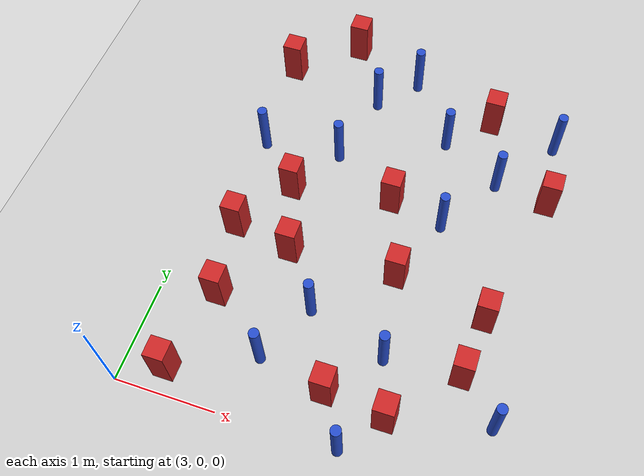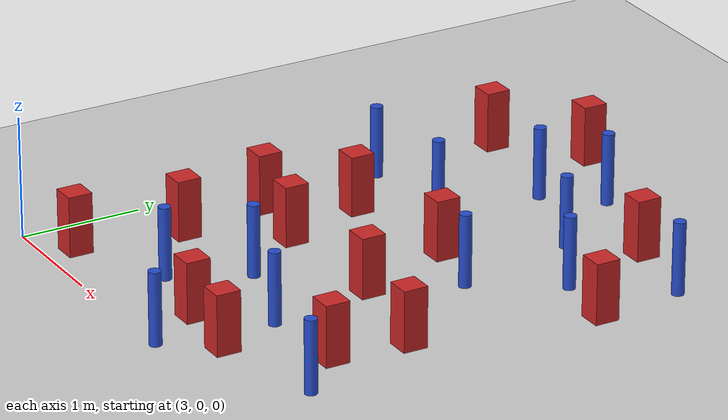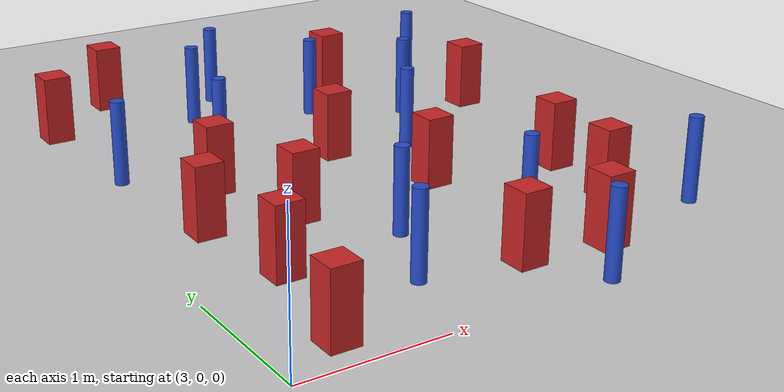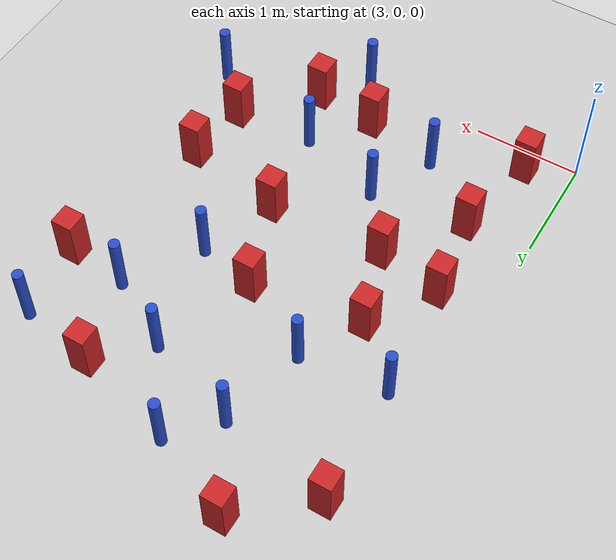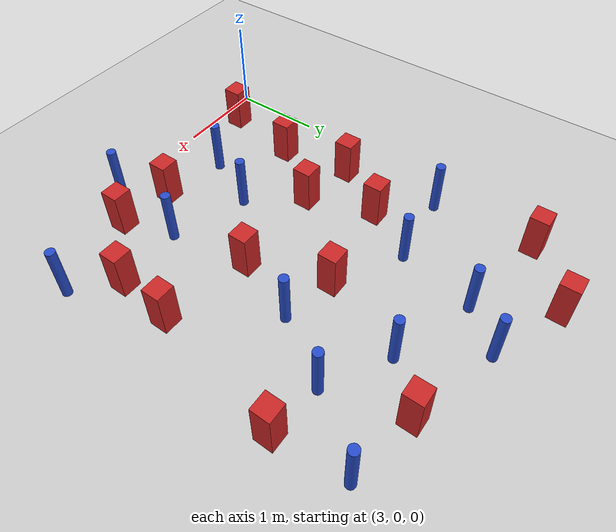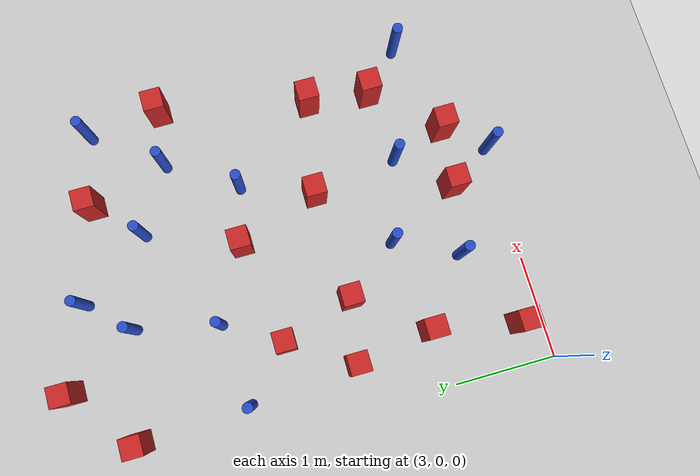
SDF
<sdf version="1.6">
 <world name="default">
  <model name="ground_plane">
   <static>1</static>
   <link name="link">
    <collision name="collision">
     <geometry><plane><normal>0 0 1</normal><size>100 100</size></plane></geometry>
     <surface><friction><ode><mu>100</mu><mu2>50</mu2></ode></friction></surface>
    </collision>
    <visual name="visual">
     <cast_shadows>0</cast_shadows>
     <geometry><plane><normal>0 0 1</normal><size>100 100</size></plane></geometry>
     <material>
      <ambient>1.0 1.0 1.0 1.0</ambient>
      <diffuse>0.8 0.8 0.8 1.0</diffuse>
      <specular>0.01 0.01 0.01 1.000000</specular>
     </material>
    </visual>
   </link>
  </model>
  <model name="pole_obstacle8">
   <static>true</static>
   <pose>4.49271938072 1.20656076858 -9.47619616065e-06 5.49618799738e-07 2.36310414071e-07 -1.55090534796e-07</pose>
   <link name="link">
    <pose>0 0 0.3 0 -0 0</pose>
    <inertial>
     <mass>1</mass>
     <inertia><ixx>0.145833</ixx><ixy>0</ixy><ixz>0</ixz><iyy>0.145833</iyy><iyz>0</iyz><izz>0.125</izz></inertia>
    </inertial>
    <collision name="collision">
     <geometry><cylinder><radius>0.05</radius><length>.6</length></cylinder></geometry>
    </collision>
    <visual name="visual">
     <geometry><cylinder><radius>0.05</radius><length>.6</length></cylinder></geometry>
     <material>
      <script><name>Gazebo/Blue</name><uri>file://media/materials/scripts/gazebo.material</uri></script>
     </material>
    </visual>
   </link>
  </model>
  <model name="square_post_obstacle9">
   <static>true</static>
   <pose>3.46107579116 1.86878623679 -6.11067671241e-07 -5.50515727128e-06 -8.79689657224e-07 2.37013304536e-05</pose>
   <link name="link">
    <pose>0 0 0.25 0 -0 0</pose>
    <inertial>
     <mass>100</mass>
     <inertia>
      <ixx>0.166667</ixx>
      <ixy>0</ixy>
      <ixz>0</ixz>
      <iyy>0.166667</iyy>
      <iyz>0</iyz>
      <izz>0.166667</izz>
     </inertia>
    </inertial>
    <collision name="collision"><geometry><box><size>.2 .2 .5</size></box></geometry></collision>
    <visual name="visual">
     <geometry><box><size>.2 .2 .5</size></box></geometry>
     <material>
      <script><name>Gazebo/Red</name><uri>file://media/materials/scripts/gazebo.material</uri></script>
     </material>
    </visual>
   </link>
  </model>
  <model name="square_post_obstacle18">
   <static>true</static>
   <pose>5.16448898681 1.8074265908 -6.11067671241e-07 -5.50515727128e-06 -8.79689657224e-07 2.37013304536e-05</pose>
   <link name="link">
    <pose>0 0 0.25 0 -0 0</pose>
    <inertial>
     <mass>100</mass>
     <inertia>
      <ixx>0.166667</ixx>
      <ixy>0</ixy>
      <ixz>0</ixz>
      <iyy>0.166667</iyy>
      <iyz>0</iyz>
      <izz>0.166667</izz>
     </inertia>
    </inertial>
    <collision name="collision"><geometry><box><size>.2 .2 .5</size></box></geometry></collision>
    <visual name="visual">
     <geometry><box><size>.2 .2 .5</size></box></geometry>
     <material>
      <script><name>Gazebo/Red</name><uri>file://media/materials/scripts/gazebo.material</uri></script>
     </material>
    </visual>
   </link>
  </model>
  <model name="pole_obstacle26">
   <static>true</static>
   <pose>6.34294631568 3.81378350283 -9.47619616065e-06 5.49618799738e-07 2.36310414051e-07 -1.55090534805e-07</pose>
   <link name="link">
    <pose>0 0 0.3 0 -0 0</pose>
    <inertial>
     <mass>1</mass>
     <inertia><ixx>0.145833</ixx><ixy>0</ixy><ixz>0</ixz><iyy>0.145833</iyy><iyz>0</iyz><izz>0.125</izz></inertia>
    </inertial>
    <collision name="collision">
     <geometry><cylinder><radius>0.05</radius><length>.6</length></cylinder></geometry>
    </collision>
    <visual name="visual">
     <geometry><cylinder><radius>0.05</radius><length>.6</length></cylinder></geometry>
     <material>
      <script><name>Gazebo/Blue</name><uri>file://media/materials/scripts/gazebo.material</uri></script>
     </material>
    </visual>
   </link>
  </model>
  <model name="square_post_obstacle23">
   <static>true</static>
   <pose>6.03022967754 1.00688846169 -6.11067671241e-07 -5.50515727128e-06 -8.79689657224e-07 2.37013304536e-05</pose>
   <link name="link">
    <pose>0 0 0.25 0 -0 0</pose>
    <inertial>
     <mass>100</mass>
     <inertia>
      <ixx>0.166667</ixx>
      <ixy>0</ixy>
      <ixz>0</ixz>
      <iyy>0.166667</iyy>
      <iyz>0</iyz>
      <izz>0.166667</izz>
     </inertia>
    </inertial>
    <collision name="collision"><geometry><box><size>.2 .2 .5</size></box></geometry></collision>
    <visual name="visual">
     <geometry><box><size>.2 .2 .5</size></box></geometry>
     <material>
      <script><name>Gazebo/Red</name><uri>file://media/materials/scripts/gazebo.material</uri></script>
     </material>
    </visual>
   </link>
  </model>
  <model name="square_post_obstacle24">
   <static>true</static>
   <pose>3.91992662925 4.54840092076 -6.11067671241e-07 -5.50515727128e-06 -8.79689657224e-07 2.37013304536e-05</pose>
   <link name="link">
    <pose>0 0 0.25 0 -0 0</pose>
    <inertial>
     <mass>100</mass>
     <inertia>
      <ixx>0.166667</ixx>
      <ixy>0</ixy>
      <ixz>0</ixz>
      <iyy>0.166667</iyy>
      <iyz>0</iyz>
      <izz>0.166667</izz>
     </inertia>
    </inertial>
    <collision name="collision"><geometry><box><size>.2 .2 .5</size></box></geometry></collision>
    <visual name="visual">
     <geometry><box><size>.2 .2 .5</size></box></geometry>
     <material>
      <script><name>Gazebo/Red</name><uri>file://media/materials/scripts/gazebo.material</uri></script>
     </material>
    </visual>
   </link>
  </model>
  <model name="pole_obstacle32">
   <static>true</static>
   <pose>4.70250894712 4.22878262935 -9.47619616065e-06 5.49618799737e-07 2.36310414037e-07 -1.55090534814e-07</pose>
   <link name="link">
    <pose>0 0 0.3 0 -0 0</pose>
    <inertial>
     <mass>1</mass>
     <inertia><ixx>0.145833</ixx><ixy>0</ixy><ixz>0</ixz><iyy>0.145833</iyy><iyz>0</iyz><izz>0.125</izz></inertia>
    </inertial>
    <collision name="collision">
     <geometry><cylinder><radius>0.05</radius><length>.6</length></cylinder></geometry>
    </collision>
    <visual name="visual">
     <geometry><cylinder><radius>0.05</radius><length>.6</length></cylinder></geometry>
     <material>
      <script><name>Gazebo/Blue</name><uri>file://media/materials/scripts/gazebo.material</uri></script>
     </material>
    </visual>
   </link>
  </model>
  <model name="pole_obstacle51">
   <static>true</static>
   <pose>3.35716697785 2.93258683462 -9.47619616065e-06 5.49618799737e-07 2.36310414051e-07 -1.55090534807e-07</pose>
   <link name="link">
    <pose>0 0 0.3 0 -0 0</pose>
    <inertial>
     <mass>1</mass>
     <inertia><ixx>0.145833</ixx><ixy>0</ixy><ixz>0</ixz><iyy>0.145833</iyy><iyz>0</iyz><izz>0.125</izz></inertia>
    </inertial>
    <collision name="collision">
     <geometry><cylinder><radius>0.05</radius><length>.6</length></cylinder></geometry>
    </collision>
    <visual name="visual">
     <geometry><cylinder><radius>0.05</radius><length>.6</length></cylinder></geometry>
     <material>
      <script><name>Gazebo/Blue</name><uri>file://media/materials/scripts/gazebo.material</uri></script>
     </material>
    </visual>
   </link>
  </model>
  <model name="square_post_obstacle43">
   <static>true</static>
   <pose>3.304013573 4.02637712108 -6.11067671241e-07 -5.50515727128e-06 -8.79689657224e-07 2.37013304536e-05</pose>
   <link name="link">
    <pose>0 0 0.25 0 -0 0</pose>
    <inertial>
     <mass>100</mass>
     <inertia>
      <ixx>0.166667</ixx>
      <ixy>0</ixy>
      <ixz>0</ixz>
      <iyy>0.166667</iyy>
      <iyz>0</iyz>
      <izz>0.166667</izz>
     </inertia>
    </inertial>
    <collision name="collision"><geometry><box><size>.2 .2 .5</size></box></geometry></collision>
    <visual name="visual">
     <geometry><box><size>.2 .2 .5</size></box></geometry>
     <material>
      <script><name>Gazebo/Red</name><uri>file://media/materials/scripts/gazebo.material</uri></script>
     </material>
    </visual>
   </link>
  </model>
  <model name="square_post_obstacle51">
   <static>true</static>
   <pose>4.87174644147 2.63009799008 -6.11067671241e-07 -5.50515727128e-06 -8.79689657224e-07 2.37013304536e-05</pose>
   <link name="link">
    <pose>0 0 0.25 0 -0 0</pose>
    <inertial>
     <mass>100</mass>
     <inertia>
      <ixx>0.166667</ixx>
      <ixy>0</ixy>
      <ixz>0</ixz>
      <iyy>0.166667</iyy>
      <iyz>0</iyz>
      <izz>0.166667</izz>
     </inertia>
    </inertial>
    <collision name="collision"><geometry><box><size>.2 .2 .5</size></box></geometry></collision>
    <visual name="visual">
     <geometry><box><size>.2 .2 .5</size></box></geometry>
     <material>
      <script><name>Gazebo/Red</name><uri>file://media/materials/scripts/gazebo.material</uri></script>
     </material>
    </visual>
   </link>
  </model>
  <model name="square_post_obstacle65">
   <static>true</static>
   <pose>3.84141606136 2.47230687507 -6.11067671241e-07 -5.50515727128e-06 -8.79689657224e-07 2.37013304536e-05</pose>
   <link name="link">
    <pose>0 0 0.25 0 -0 0</pose>
    <inertial>
     <mass>100</mass>
     <inertia>
      <ixx>0.166667</ixx>
      <ixy>0</ixy>
      <ixz>0</ixz>
      <iyy>0.166667</iyy>
      <iyz>0</iyz>
      <izz>0.166667</izz>
     </inertia>
    </inertial>
    <collision name="collision"><geometry><box><size>.2 .2 .5</size></box></geometry></collision>
    <visual name="visual">
     <geometry><box><size>.2 .2 .5</size></box></geometry>
     <material>
      <script><name>Gazebo/Red</name><uri>file://media/materials/scripts/gazebo.material</uri></script>
     </material>
    </visual>
   </link>
  </model>
  <model name="pole_obstacle87">
   <static>true</static>
   <pose>5.4332525018 2.49948121387 -9.47619616065e-06 5.49618799738e-07 2.36310414051e-07 -1.55090534805e-07</pose>
   <link name="link">
    <pose>0 0 0.3 0 -0 0</pose>
    <inertial>
     <mass>1</mass>
     <inertia><ixx>0.145833</ixx><ixy>0</ixy><ixz>0</ixz><iyy>0.145833</iyy><iyz>0</iyz><izz>0.125</izz></inertia>
    </inertial>
    <collision name="collision">
     <geometry><cylinder><radius>0.05</radius><length>.6</length></cylinder></geometry>
    </collision>
    <visual name="visual">
     <geometry><cylinder><radius>0.05</radius><length>.6</length></cylinder></geometry>
     <material>
      <script><name>Gazebo/Blue</name><uri>file://media/materials/scripts/gazebo.material</uri></script>
     </material>
    </visual>
   </link>
  </model>
  <model name="square_post_obstacle84">
   <static>true</static>
   <pose>5.479542751 0.405188221135 -6.11067671241e-07 -5.50515727128e-06 -8.79689657224e-07 2.37013304536e-05</pose>
   <link name="link">
    <pose>0 0 0.25 0 -0 0</pose>
    <inertial>
     <mass>100</mass>
     <inertia>
      <ixx>0.166667</ixx>
      <ixy>0</ixy>
      <ixz>0</ixz>
      <iyy>0.166667</iyy>
      <iyz>0</iyz>
      <izz>0.166667</izz>
     </inertia>
    </inertial>
    <collision name="collision"><geometry><box><size>.2 .2 .5</size></box></geometry></collision>
    <visual name="visual">
     <geometry><box><size>.2 .2 .5</size></box></geometry>
     <material>
      <script><name>Gazebo/Red</name><uri>file://media/materials/scripts/gazebo.material</uri></script>
     </material>
    </visual>
   </link>
  </model>
  <model name="square_post_obstacle94">
   <static>true</static>
   <pose>3.41950850616 0.244072524824 -6.11067671241e-07 -5.50515727128e-06 -8.79689657224e-07 2.37013304536e-05</pose>
   <link name="link">
    <pose>0 0 0.25 0 -0 0</pose>
    <inertial>
     <mass>100</mass>
     <inertia>
      <ixx>0.166667</ixx>
      <ixy>0</ixy>
      <ixz>0</ixz>
      <iyy>0.166667</iyy>
      <iyz>0</iyz>
      <izz>0.166667</izz>
     </inertia>
    </inertial>
    <collision name="collision"><geometry><box><size>.2 .2 .5</size></box></geometry></collision>
    <visual name="visual">
     <geometry><box><size>.2 .2 .5</size></box></geometry>
     <material>
      <script><name>Gazebo/Red</name><uri>file://media/materials/scripts/gazebo.material</uri></script>
     </material>
    </visual>
   </link>
  </model>
  <model name="square_post_obstacle99">
   <static>true</static>
   <pose>6.09818760231 1.62147928227 -6.11067671241e-07 -5.50515727128e-06 -8.79689657224e-07 2.37013304536e-05</pose>
   <link name="link">
    <pose>0 0 0.25 0 -0 0</pose>
    <inertial>
     <mass>100</mass>
     <inertia>
      <ixx>0.166667</ixx>
      <ixy>0</ixy>
      <ixz>0</ixz>
      <iyy>0.166667</iyy>
      <iyz>0</iyz>
      <izz>0.166667</izz>
     </inertia>
    </inertial>
    <collision name="collision"><geometry><box><size>.2 .2 .5</size></box></geometry></collision>
    <visual name="visual">
     <geometry><box><size>.2 .2 .5</size></box></geometry>
     <material>
      <script><name>Gazebo/Red</name><uri>file://media/materials/scripts/gazebo.material</uri></script>
     </material>
    </visual>
   </link>
  </model>
  <model name="square_post_obstacle101">
   <static>true</static>
   <pose>6.40490344487 3.08724426789 -6.11067671241e-07 -5.50515727128e-06 -8.79689657224e-07 2.37013304536e-05</pose>
   <link name="link">
    <pose>0 0 0.25 0 -0 0</pose>
    <inertial>
     <mass>100</mass>
     <inertia>
      <ixx>0.166667</ixx>
      <ixy>0</ixy>
      <ixz>0</ixz>
      <iyy>0.166667</iyy>
      <iyz>0</iyz>
      <izz>0.166667</izz>
     </inertia>
    </inertial>
    <collision name="collision"><geometry><box><size>.2 .2 .5</size></box></geometry></collision>
    <visual name="visual">
     <geometry><box><size>.2 .2 .5</size></box></geometry>
     <material>
      <script><name>Gazebo/Red</name><uri>file://media/materials/scripts/gazebo.material</uri></script>
     </material>
    </visual>
   </link>
  </model>
  <model name="square_post_obstacle112">
   <static>true</static>
   <pose>3.58019920946 1.09554158535 -6.11067671241e-07 -5.50515727128e-06 -8.79689657224e-07 2.37013304536e-05</pose>
   <link name="link">
    <pose>0 0 0.25 0 -0 0</pose>
    <inertial>
     <mass>100</mass>
     <inertia>
      <ixx>0.166667</ixx>
      <ixy>0</ixy>
      <ixz>0</ixz>
      <iyy>0.166667</iyy>
      <iyz>0</iyz>
      <izz>0.166667</izz>
     </inertia>
    </inertial>
    <collision name="collision"><geometry><box><size>.2 .2 .5</size></box></geometry></collision>
    <visual name="visual">
     <geometry><box><size>.2 .2 .5</size></box></geometry>
     <material>
      <script><name>Gazebo/Red</name><uri>file://media/materials/scripts/gazebo.material</uri></script>
     </material>
    </visual>
   </link>
  </model>
  <model name="pole_obstacle121">
   <static>true</static>
   <pose>5.21948381396 3.52625773737 -9.47619616065e-06 5.49618799738e-07 2.36310414051e-07 -1.55090534805e-07</pose>
   <link name="link">
    <pose>0 0 0.3 0 -0 0</pose>
    <inertial>
     <mass>1</mass>
     <inertia><ixx>0.145833</ixx><ixy>0</ixy><ixz>0</ixz><iyy>0.145833</iyy><iyz>0</iyz><izz>0.125</izz></inertia>
    </inertial>
    <collision name="collision">
     <geometry><cylinder><radius>0.05</radius><length>.6</length></cylinder></geometry>
    </collision>
    <visual name="visual">
     <geometry><cylinder><radius>0.05</radius><length>.6</length></cylinder></geometry>
     <material>
      <script><name>Gazebo/Blue</name><uri>file://media/materials/scripts/gazebo.material</uri></script>
     </material>
    </visual>
   </link>
  </model>
  <model name="pole_obstacle150">
   <static>true</static>
   <pose>5.16165120928 0.0162818071046 -9.47619616065e-06 5.49618799737e-07 2.36310414074e-07 -1.55090534793e-07</pose>
   <link name="link">
    <pose>0 0 0.3 0 -0 0</pose>
    <inertial>
     <mass>1</mass>
     <inertia><ixx>0.145833</ixx><ixy>0</ixy><ixz>0</ixz><iyy>0.145833</iyy><iyz>0</iyz><izz>0.125</izz></inertia>
    </inertial>
    <collision name="collision">
     <geometry><cylinder><radius>0.05</radius><length>.6</length></cylinder></geometry>
    </collision>
    <visual name="visual">
     <geometry><cylinder><radius>0.05</radius><length>.6</length></cylinder></geometry>
     <material>
      <script><name>Gazebo/Blue</name><uri>file://media/materials/scripts/gazebo.material</uri></script>
     </material>
    </visual>
   </link>
  </model>
  <model name="pole_obstacle153">
   <static>true</static>
   <pose>4.1645755932 3.01764296805 -9.47619616065e-06 5.49618799738e-07 2.36310414051e-07 -1.55090534805e-07</pose>
   <link name="link">
    <pose>0 0 0.3 0 -0 0</pose>
    <inertial>
     <mass>1</mass>
     <inertia><ixx>0.145833</ixx><ixy>0</ixy><ixz>0</ixz><iyy>0.145833</iyy><iyz>0</iyz><izz>0.125</izz></inertia>
    </inertial>
    <collision name="collision">
     <geometry><cylinder><radius>0.05</radius><length>.6</length></cylinder></geometry>
    </collision>
    <visual name="visual">
     <geometry><cylinder><radius>0.05</radius><length>.6</length></cylinder></geometry>
     <material>
      <script><name>Gazebo/Blue</name><uri>file://media/materials/scripts/gazebo.material</uri></script>
     </material>
    </visual>
   </link>
  </model>
  <model name="pole_obstacle163">
   <static>true</static>
   <pose>4.20235618574 0.60353743324 -9.47619616065e-06 5.49618799737e-07 2.36310414061e-07 -1.550905348e-07</pose>
   <link name="link">
    <pose>0 0 0.3 0 -0 0</pose>
    <inertial>
     <mass>1</mass>
     <inertia><ixx>0.145833</ixx><ixy>0</ixy><ixz>0</ixz><iyy>0.145833</iyy><iyz>0</iyz><izz>0.125</izz></inertia>
    </inertial>
    <collision name="collision">
     <geometry><cylinder><radius>0.05</radius><length>.6</length></cylinder></geometry>
    </collision>
    <visual name="visual">
     <geometry><cylinder><radius>0.05</radius><length>.6</length></cylinder></geometry>
     <material>
      <script><name>Gazebo/Blue</name><uri>file://media/materials/scripts/gazebo.material</uri></script>
     </material>
    </visual>
   </link>
  </model>
  <model name="square_post_obstacle156">
   <static>true</static>
   <pose>4.88539357469 0.473647851376 -6.11067671241e-07 -5.50515727128e-06 -8.79689657224e-07 2.37013304536e-05</pose>
   <link name="link">
    <pose>0 0 0.25 0 -0 0</pose>
    <inertial>
     <mass>100</mass>
     <inertia>
      <ixx>0.166667</ixx>
      <ixy>0</ixy>
      <ixz>0</ixz>
      <iyy>0.166667</iyy>
      <iyz>0</iyz>
      <izz>0.166667</izz>
     </inertia>
    </inertial>
    <collision name="collision"><geometry><box><size>.2 .2 .5</size></box></geometry></collision>
    <visual name="visual">
     <geometry><box><size>.2 .2 .5</size></box></geometry>
     <material>
      <script><name>Gazebo/Red</name><uri>file://media/materials/scripts/gazebo.material</uri></script>
     </material>
    </visual>
   </link>
  </model>
  <model name="square_post_obstacle166">
   <static>true</static>
   <pose>4.07859456565 1.75791759399 -6.11067671241e-07 -5.50515727128e-06 -8.79689657224e-07 2.37013304536e-05</pose>
   <link name="link">
    <pose>0 0 0.25 0 -0 0</pose>
    <inertial>
     <mass>100</mass>
     <inertia>
      <ixx>0.166667</ixx>
      <ixy>0</ixy>
      <ixz>0</ixz>
      <iyy>0.166667</iyy>
      <iyz>0</iyz>
      <izz>0.166667</izz>
     </inertia>
    </inertial>
    <collision name="collision"><geometry><box><size>.2 .2 .5</size></box></geometry></collision>
    <visual name="visual">
     <geometry><box><size>.2 .2 .5</size></box></geometry>
     <material>
      <script><name>Gazebo/Red</name><uri>file://media/materials/scripts/gazebo.material</uri></script>
     </material>
    </visual>
   </link>
  </model>
  <model name="pole_obstacle174">
   <static>true</static>
   <pose>5.29815091333 0.94071135021 -9.47619616065e-06 5.49618799737e-07 2.36310414061e-07 -1.550905348e-07</pose>
   <link name="link">
    <pose>0 0 0.3 0 -0 0</pose>
    <inertial>
     <mass>1</mass>
     <inertia><ixx>0.145833</ixx><ixy>0</ixy><ixz>0</ixz><iyy>0.145833</iyy><iyz>0</iyz><izz>0.125</izz></inertia>
    </inertial>
    <collision name="collision">
     <geometry><cylinder><radius>0.05</radius><length>.6</length></cylinder></geometry>
    </collision>
    <visual name="visual">
     <geometry><cylinder><radius>0.05</radius><length>.6</length></cylinder></geometry>
     <material>
      <script><name>Gazebo/Blue</name><uri>file://media/materials/scripts/gazebo.material</uri></script>
     </material>
    </visual>
   </link>
  </model>
  <model name="pole_obstacle176">
   <static>true</static>
   <pose>6.41638071157 0.618670548504 -9.47619616065e-06 5.49618799737e-07 2.36310414061e-07 -1.550905348e-07</pose>
   <link name="link">
    <pose>0 0 0.3 0 -0 0</pose>
    <inertial>
     <mass>1</mass>
     <inertia><ixx>0.145833</ixx><ixy>0</ixy><ixz>0</ixz><iyy>0.145833</iyy><iyz>0</iyz><izz>0.125</izz></inertia>
    </inertial>
    <collision name="collision">
     <geometry><cylinder><radius>0.05</radius><length>.6</length></cylinder></geometry>
    </collision>
    <visual name="visual">
     <geometry><cylinder><radius>0.05</radius><length>.6</length></cylinder></geometry>
     <material>
      <script><name>Gazebo/Blue</name><uri>file://media/materials/scripts/gazebo.material</uri></script>
     </material>
    </visual>
   </link>
  </model>
  <model name="pole_obstacle189">
   <static>true</static>
   <pose>4.34606720305 3.82869813346 -9.47619616065e-06 5.49618799738e-07 2.36310414051e-07 -1.55090534805e-07</pose>
   <link name="link">
    <pose>0 0 0.3 0 -0 0</pose>
    <inertial>
     <mass>1</mass>
     <inertia><ixx>0.145833</ixx><ixy>0</ixy><ixz>0</ixz><iyy>0.145833</iyy><iyz>0</iyz><izz>0.125</izz></inertia>
    </inertial>
    <collision name="collision">
     <geometry><cylinder><radius>0.05</radius><length>.6</length></cylinder></geometry>
    </collision>
    <visual name="visual">
     <geometry><cylinder><radius>0.05</radius><length>.6</length></cylinder></geometry>
     <material>
      <script><name>Gazebo/Blue</name><uri>file://media/materials/scripts/gazebo.material</uri></script>
     </material>
    </visual>
   </link>
  </model>
  <model name="square_post_obstacle200">
   <static>true</static>
   <pose>5.6300599748 3.94927807603 -6.11067671241e-07 -5.50515727128e-06 -8.79689657224e-07 2.37013304536e-05</pose>
   <link name="link">
    <pose>0 0 0.25 0 -0 0</pose>
    <inertial>
     <mass>100</mass>
     <inertia>
      <ixx>0.166667</ixx>
      <ixy>0</ixy>
      <ixz>0</ixz>
      <iyy>0.166667</iyy>
      <iyz>0</iyz>
      <izz>0.166667</izz>
     </inertia>
    </inertial>
    <collision name="collision"><geometry><box><size>.2 .2 .5</size></box></geometry></collision>
    <visual name="visual">
     <geometry><box><size>.2 .2 .5</size></box></geometry>
     <material>
      <script><name>Gazebo/Red</name><uri>file://media/materials/scripts/gazebo.material</uri></script>
     </material>
    </visual>
   </link>
  </model>
  <model name="pole_obstacle201">
   <static>true</static>
   <pose>5.85260580024 3.1606544039 -9.47619616065e-06 5.49618799738e-07 2.36310414051e-07 -1.55090534805e-07</pose>
   <link name="link">
    <pose>0 0 0.3 0 -0 0</pose>
    <inertial>
     <mass>1</mass>
     <inertia><ixx>0.145833</ixx><ixy>0</ixy><ixz>0</ixz><iyy>0.145833</iyy><iyz>0</iyz><izz>0.125</izz></inertia>
    </inertial>
    <collision name="collision">
     <geometry><cylinder><radius>0.05</radius><length>.6</length></cylinder></geometry>
    </collision>
    <visual name="visual">
     <geometry><cylinder><radius>0.05</radius><length>.6</length></cylinder></geometry>
     <material>
      <script><name>Gazebo/Blue</name><uri>file://media/materials/scripts/gazebo.material</uri></script>
     </material>
    </visual>
   </link>
  </model>
 </world>
</sdf>
